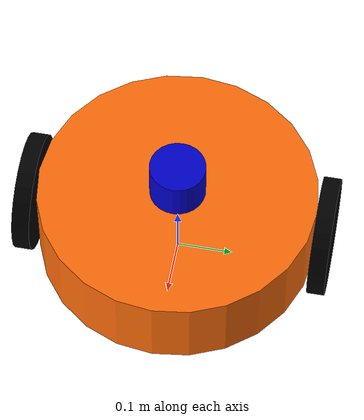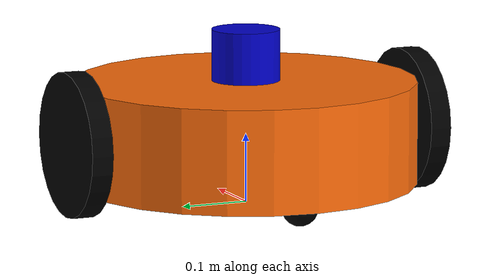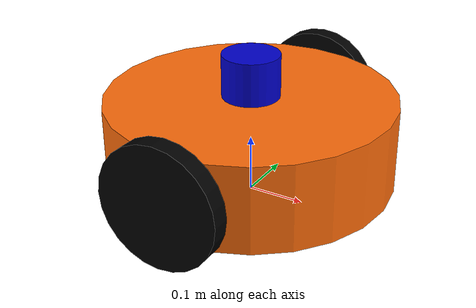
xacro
<?xml version='1.0'?>

<!--Choose a name space and start xacro-->
<robot name="differential_drive_robot" xmlns:xacro="http://www.ros.org/wiki/xacro">

    <xacro:arg name="publish_tfs" default="true"/>
    <xacro:arg name="laser_range_resolution" default="0.01"/>
    <xacro:arg name="laser_noise_type" default="gaussian"/>
    <xacro:arg name="laser_noise_mean" default="0.0"/>
    <xacro:arg name="laser_noise_stddv" default="0.01"/>

    <!--Including all xacro files that are needed to describe the robot model-->
    <xacro:include filename="$(find rvc_simulation_environment)/models/robot_vacuum_cleaner/parameter.xacro"/>
    <xacro:include filename="$(find rvc_simulation_environment)/models/robot_vacuum_cleaner/materials.xacro"/>
    <xacro:include filename="$(find rvc_simulation_environment)/models/robot_vacuum_cleaner/macros.xacro"/>
    <xacro:include filename="$(find rvc_simulation_environment)/models/robot_vacuum_cleaner/diff_drive.gazebo"/>

<!--Define Chassis______________________________________________________________________________________________________________________________________________________-->

    <!--Create a dummy link as a base link-->
    <link name= "base_link">
        <pose>0 0 0 0 0 0 </pose>
    </link>

    <!--The joint between the chassis of the robot and the base of the robot -->
    <joint type="fixed" name="base_link_to_chassis">
        <child link="chassis_link"/>
        <parent link="base_link"/>
    </joint>

    <!-- Define the chassis of the differential drive robot, which is our base -->
    <link name="chassis_link">
    <collision>
        <origin xyz="${pos_chassis}" rpy="${rot_chassis}" />
        <geometry>
            <cylinder radius="${r_chassis}" length="${h_chassis}" />
        </geometry>
    </collision>
    <visual>
        <origin xyz="${pos_chassis}" rpy="${rot_chassis}" />
        <geometry>
            <cylinder radius="${r_chassis}" length="${h_chassis}" />
        </geometry>
        <material name="orange"/>
    </visual>
    <inertial>
        <origin xyz="${pos_chassis}" rpy="${rot_chassis}" />
        <mass value= "${m_chassis}"/>
        <xacro:cylinder_inertia m="${m_chassis}" r="${r_chassis}" h="${h_chassis}"/>
    </inertial>
</link>

    <!--Joint betweeb chassis (cylinder) and caster wheel (sphere) -->
    <joint name="chassis_to_caster_wheel_front" type="fixed">
        <parent link="chassis_link"/>
        <child link="caster_wheel_front_link"/>
    </joint>

    <!--The definition of the caster wheel which is simulated by a sphere-->
    <link name='caster_wheel_front_link'>
        <collision>
            <origin xyz="${pos_f_caster_wheel}" rpy="${rot_caster_wheel}"/>
            <geometry>
                <sphere radius="${r_caster_wheel}"/>
            </geometry>
        </collision>
        <visual>
            <origin xyz="${pos_f_caster_wheel}" rpy="${rot_caster_wheel}"/>
            <geometry>
                <sphere radius="${r_caster_wheel}"/>
            </geometry>
            <material name="black"/>
        </visual>
        <inertial>
            <origin xyz="${pos_f_caster_wheel}" rpy="${rot_caster_wheel}"/>
            <mass value= "${m_caster_wheel}"/>
            <xacro:sphere_inertia m="${m_caster_wheel}" r="${r_caster_wheel}"/>
        </inertial>
    </link>

    <!--Joint betweeb chassis (cylinder) and caster wheel (sphere) -->
    <joint name="chassis_to_caster_wheel_back" type="fixed">
        <parent link="chassis_link"/>
        <child link="caster_wheel_back_link"/>
    </joint>

    <!--The definition of the caster wheel which is simulated by a sphere-->
    <link name='caster_wheel_back_link'>
        <collision>
            <origin xyz="${pos_b_caster_wheel}" rpy="${rot_caster_wheel}"/>
            <geometry>
                <sphere radius="${r_caster_wheel}"/>
            </geometry>
        </collision>
        <visual>
            <origin xyz="${pos_b_caster_wheel}" rpy="${rot_caster_wheel}"/>
            <geometry>
                <sphere radius="${r_caster_wheel}"/>
            </geometry>
            <material name="black"/>
        </visual>
        <inertial>
            <origin xyz="${pos_b_caster_wheel}" rpy="${rot_caster_wheel}"/>
            <mass value= "${m_caster_wheel}"/>
            <xacro:sphere_inertia m="${m_caster_wheel}" r="${r_caster_wheel}"/>
        </inertial>
    </link>

    <!--Define the left wheel link of the differential drive mobile robot-->
    <link name="left_wheel_link">
        <collision>
            <origin xyz="${pos_l_wheel}" rpy="${rot_wheel}" />
            <geometry>
                <cylinder radius="${r_wheel}" length="${w_wheel}" />
            </geometry>
        </collision>
        <visual>
            <origin xyz="${pos_l_wheel}" rpy="${rot_wheel}" />
            <geometry>
                <cylinder radius="${r_wheel}" length="${w_wheel}" />
            </geometry>
            <material name="black"/>
        </visual>
        <inertial>
            <origin xyz="${pos_l_wheel}" rpy="${rot_wheel}" />
            <mass value= "${m_wheel}"/>
            <xacro:cylinder_inertia m="${m_wheel}" r="${r_wheel}" h="${w_wheel}"/>
        </inertial>
    </link>

    <!--Define the left wheel link of the differential drive mobile robot-->
    <link name="right_wheel_link">
        <collision>
            <origin xyz="${pos_r_wheel}" rpy="${rot_wheel}" />
            <geometry>
                <cylinder radius="${r_wheel}" length="${w_wheel}" />
            </geometry>
        </collision>
        <visual>
            <origin xyz="${pos_r_wheel}" rpy="${rot_wheel}" />
            <geometry>
                <cylinder radius="${r_wheel}" length="${w_wheel}" />
            </geometry>
            <material name="black"/>
        </visual>
        <inertial>
            <origin xyz="${pos_r_wheel}" rpy="${rot_wheel}" />
            <mass value= "${m_wheel}"/>
            <xacro:cylinder_inertia m="${m_wheel}" r="${r_wheel}" h="${w_wheel}"/>
        </inertial>
    </link>

    <!-- Set joints for the driving wheels which can be controlled over ROS -->
    <joint name="base_link_to_left_wheel" type="continuous" >
        <origin xyz="${joint_pos_l_wheel}" rpy="${joint_rot_wheel}"/>
        <axis xyz="0 1 0" rpy="0 0 0"/>
        <child link="left_wheel_link"/>
        <parent link="base_link"/>
        <limit effort="100" velocity="100"/>
        <joint_properties damping="0.2" friction="0.05"/>
    </joint>

    <joint name="base_link_to_right_wheel" type="continuous">
        <origin xyz="${joint_pos_r_wheel}" rpy="${joint_rot_wheel}"/>
        <axis xyz="0 1 0" rpy="0 0 0"/>
        <child link="right_wheel_link"/>
        <parent link="base_link"/>
        <limit effort="100" velocity="100"/>
        <joint_properties damping="0.2" friction="0.05"/>
    </joint>

<!--Define Sensors______________________________________________________________________________________________________________________________________________________-->

    <!--Hokuyo LiDAR-Sensor-->
    <link name="laser_scanner_link">
        <collision>
            <origin xyz= "${pos_laser_scanner}" rpy="${rot_laser_scanner}"/>
            <geometry>
                <cylinder radius="${r_laser_scanner}" length="${h_laser_scanner}" />
            </geometry>
        </collision>
        <visual>
            <origin xyz= "${pos_laser_scanner}" rpy="${rot_laser_scanner}"/>
            <geometry>
                <cylinder radius="${r_laser_scanner}" length="${h_laser_scanner}" />
            </geometry>
            <material name="blue"/>
        </visual>
        <inertial>
            <origin xyz= "${pos_laser_scanner}" rpy="${rot_laser_scanner}"/>
            <mass value="${m_laser_scanner}"/>
            <xacro:cylinder_inertia m="${m_laser_scanner}" r="${r_laser_scanner}" h="${h_laser_scanner}" />
        </inertial>
    </link>

    <joint name="chassis_to_laser_scanner" type="fixed">
        <origin xyz="${joint_pos_laser_scanner}" rpy="${joint_rot_laser_scanner}"/>
        <axis xyz="${joint_axis_laser_scanner}"/>
        <child link="laser_scanner_link"/>
        <parent link="base_link"/>
    </joint>

</robot>

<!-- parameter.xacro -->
<robot xmlns:xacro="http://www.ros.org/wiki/xacro">

    <!--Define the parameters for the differential drive mobile robot-->
    <!--All units are SI-Units-->

    <!--The parameters of the robot vacuum cleaner chassis (cylinder shape)-->
    <xacro:property name="r_chassis" value="0.25"/>                                             <!--Radius of the chassis-->
    <xacro:property name="h_chassis" value="0.15"/>                                             <!--Height of the chassis-->
    <xacro:property name="d_chassis" value="1440"/>                                             <!--Density of the chassis-->
    <xacro:property name="v_chassis" value="${pi * r_chassis * r_chassis * h_chassis}"/>        <!--Volume of the chassis (no use) -->
    <xacro:property name="m_chassis" value="${v_chassis * d_chassis}"/>                         <!--Mass of the chassis-->
    <xacro:property name="dist_chassis_to_ground" value="${h_chassis/5}"/>                      <!--Distance between the bottom of the chassis and the ground-->
    <xacro:property name="pos_chassis" value="0 0 ${h_chassis/2 + dist_chassis_to_ground}"/>    <!--Origin position of the chassis-->
    <xacro:property name="rot_chassis" value="0 0 0"/>                                          <!--Origin rotation of the chassis-->

    <!--Access chassis points ()-->
    <xacro:property name="chassis_center" value="${h_chassis/2 + dist_chassis_to_ground}"/>
    <xacro:property name="chassis_top" value="${chassis_center + (h_chassis/2)}"/>
    <xacro:property name="chassis_bottom" value="${chassis_center - (h_chassis/2)}"/>
    <xacro:property name="chassis_front" value="${r_chassis}"/>
    <xacro:property name="chassis_back" value="${-r_chassis}"/>

    <!--The parameters for the two driving wheels (cylinder shape)-->
    <xacro:property name="r_wheel" value="${h_chassis/2 + dist_chassis_to_ground}"/>                                            <!--Radius of the wheels-->
    <xacro:property name="w_wheel" value="${0.3 * r_wheel}"/>                                                                   <!--Width of the wheels-->
    <xacro:property name="d_wheel" value="1440.0"/>                                                                             <!--Density of the material-->
    <xacro:property name="v_wheel" value="${pi * r_wheel * r_wheel * w_wheel}"/>                                                <!--Volume of the wheels -->
    <xacro:property name="m_wheel" value="${v_wheel * d_wheel}"/>                                                               <!--Mass off the wheels-->
    <xacro:property name="torque_wheel" value="5.0"/>                                                                           <!--Torque of the wheels-->
    <xacro:property name="wheel_separation" value="${2 * r_chassis + w_wheel}"/>                                                <!--Distance between the two wheels-->
    <xacro:property name="pos_l_wheel" value="0 0 0"/>                                                                          <!--Origin position of the left wheel -->
    <xacro:property name="pos_r_wheel" value="0 0 0"/>                                                                          <!--Origin position of the right wheel -->
    <xacro:property name="rot_wheel" value="0 ${pi/2} ${pi/2}"/>                                                                <!--Origin rotation of the wheels -->
    <xacro:property name="joint_pos_l_wheel" value="0 ${r_chassis + w_wheel/2} ${h_chassis/2 + dist_chassis_to_ground}"/>       <!--Origin position of the left wheel joint-->
    <xacro:property name="joint_pos_r_wheel" value="0 ${-(r_chassis + w_wheel/2)} ${h_chassis/2 + dist_chassis_to_ground}"/>    <!--Origin position of the right wheel joint-->
    <xacro:property name="joint_rot_wheel" value="0 0 0"/>                                                                      <!--Origin rotation of the wheel joints-->

    <!--The parameter of the two caster wheels (sphere shape)-->
    <xacro:property name="r_caster_wheel" value="${0.25 * r_wheel}"/>                                                   <!--Radius of the caster wheels -->
    <xacro:property name="d_caster_wheel" value="1440.0"/>                                                              <!--Density of the caster wheel material -->
    <xacro:property name="v_caster_wheel" value="${(4/3) * pi * r_caster_wheel * r_caster_wheel * r_caster_wheel}"/>    <!--Volume of the caster wheels -->
    <xacro:property name="m_caster_wheel" value="${v_caster_wheel * d_caster_wheel}"/>                                  <!--Mass of the caster wheels -->
    <xacro:property name="pos_f_caster_wheel" value="${0.75*r_chassis} 0 ${0.25 * r_wheel}"/>                           <!--Position of the front caster weheel-->
    <xacro:property name="pos_b_caster_wheel" value="${-0.75*r_chassis} 0 ${0.25 * r_wheel}"/>                          <!--Position of the back caster wheel-->
    <xacro:property name="rot_caster_wheel" value="0 0 0"/>                                                             <!--Rotation of the caster wheels-->

    <!--The parameter of the Hokuya Laser Scanner-->
    <xacro:property name="r_laser_scanner" value="0.05"/>
    <xacro:property name="h_laser_scanner" value="0.075"/>
    <xacro:property name="d_laser_scanner" value="1440.0"/>
    <xacro:property name="v_laser_scanner" value="${pi * r_laser_scanner * r_laser_scanner * h_laser_scanner}"/>
    <xacro:property name="m_laser_scanner" value="${v_laser_scanner * d_laser_scanner}"/>
    <xacro:property name="pos_laser_scanner" value="0 0 0"/>
    <xacro:property name="rot_laser_scanner" value="0 0 0"/>
    <xacro:property name="joint_pos_laser_scanner" value="0 0 ${chassis_top + h_laser_scanner/2}"/>
    <xacro:property name="joint_rot_laser_scanner" value="0 0 0"/>
    <xacro:property name="joint_axis_laser_scanner" value="0 1 0"/>

    <!--Technical specifications-->
    <xacro:property name="sensor_name" value="hokuyo_laser_scanner_head"/>
    <xacro:property name="sensor_type" value="ray"/>
    <xacro:property name="update_rate" value="10"/>
    <xacro:property name="pose_hokuyo_laser_scanner_head" value="0 0 0"/>
    <xacro:property name="visu_rays" value="false"/>
    <xacro:property name="numb_of_samples" value="720"/>
    <xacro:property name="angular_resolution" value="1"/>
    <xacro:property name="min_angle" value="${-pi/2}"/>                 <!--Minimum angle [rad]-->
    <xacro:property name="max_angle" value="${pi/2}"/>                  <!--Maximum angle [rad]-->
    <xacro:property name="min_range" value="0.1"/>                      <!--Minimum distance the lidar can measure-->
    <xacro:property name="max_range" value="10.0"/>                     <!--Maximum distance the lidar can measure-->
    <xacro:property name="range_resolution" value="$(arg laser_range_resolution)"/>
    <xacro:property name="noise_type" value="$(arg laser_noise_type)"/>
    <xacro:property name="noise_mean" value="$(arg laser_noise_mean)"/>                     <!--Mean of the gaussian noise in [m]-->
    <xacro:property name="noise_stddv" value="$(arg laser_noise_stddv)"/>                   <!--Standard deviation in [m]-->
    <xacro:property name="scan_topic" value="/scan"/>
    <xacro:property name="frame_name" value="laser_scanner_link"/>

</robot>

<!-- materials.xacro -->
<robot xmlns:xacro="http://www.ros.org/wiki/xacro">

    <material name="black">
        <color rgba="0.0 0.0 0.0 1.0"/>
    </material>

    <material name="blue">
        <color rgba="0.0 0.0 0.8 1.0"/>
    </material>

    <material name="green">
        <color rgba="0.0 0.8 0.0 1.0"/>
    </material>

    <material name="grey">
        <color rgba="0.2 0.2 0.2 1.0"/>
    </material>

    <material name="orange">
        <color rgba="${255/255} ${108/255} ${10/255} 1.0"/>
    </material>

    <material name="brown">
        <color rgba="${222/255} ${207/255} ${195/255} 1.0"/>
    </material>

    <material name="red">
        <color rgba="0.8 0.0 0.0 1.0"/>
    </material>

    <material name="white">
        <color rgba="1.0 1.0 1.0 1.0"/>
    </material>

</robot>

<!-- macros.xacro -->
<robot xmlns:xacro="http://www.ros.org/wiki/xacro">

  <xacro:macro name="box_inertia" params="m x y z">
      <inertia
        ixx="${m*(y*y+z*z)/12}" ixy = "0" ixz = "0"
        iyy="${m*(x*x+z*z)/12}" iyz = "0"
        izz="${m*(x*x+z*z)/12}"
      />
  </xacro:macro>

  <xacro:macro name="cylinder_inertia" params="m r h">
    <inertia
      ixx="${m*(3*r*r+h*h)/12}" ixy = "0" ixz = "0"
      iyy="${m*(3*r*r+h*h)/12}" iyz = "0"
      izz="${m*r*r/2}"
    />
  </xacro:macro>

  <xacro:macro name="sphere_inertia" params="m r">
    <inertia
      ixx="${2*m*r*r/5}" ixy = "0" ixz = "0"
      iyy="${2*m*r*r/5}" iyz = "0"
      izz="${2*m*r*r/5}"
    />
  </xacro:macro>

</robot>
